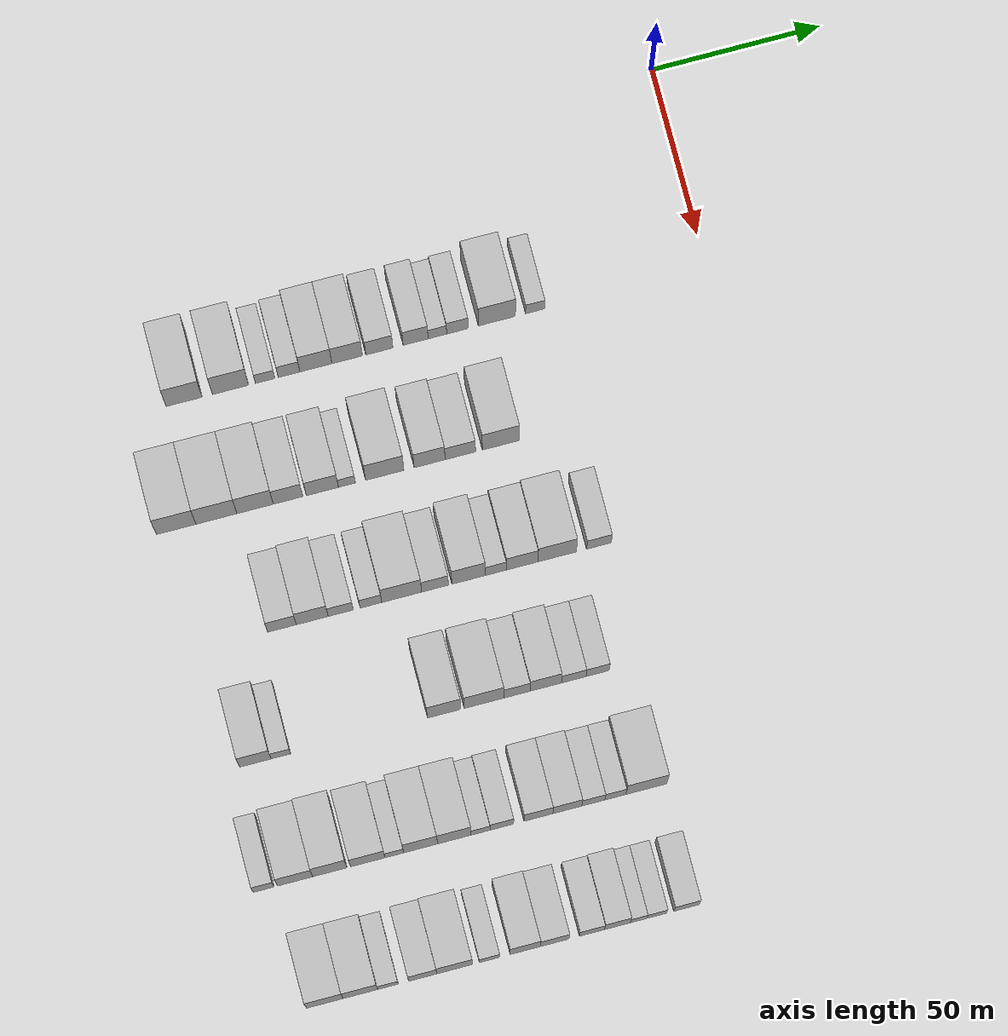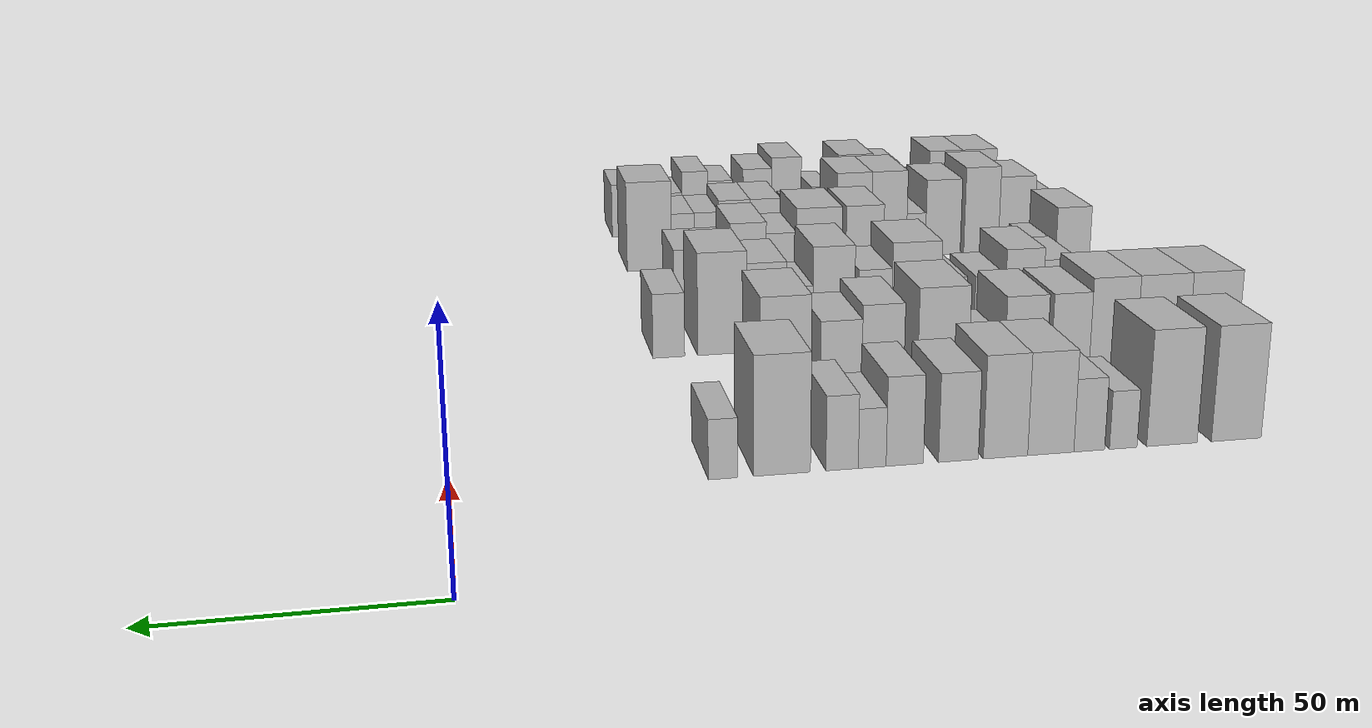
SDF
<sdf version="1.6">
 <world name="default">
  <model name="building_43">
   <static>1</static>
   <pose>50.0000 -153.5417 0 0.000000 0.000000 0.000000</pose>
   <link name="link">
    <pose>0 0 12.00 0 0 0</pose>
    <collision name="collision"><geometry><box><size>20.0000 10.5641 24.0000</size></box></geometry></collision>
    <visual name="visual">
     <cast_shadows>0</cast_shadows>
     <geometry><box><size>20.0000 10.5641 24.0000</size></box></geometry>
     <material>
      <script>
       <uri>model://HANNAS_wall/materials/scripts</uri>
       <uri>model://HANNAS_wall/materials/textures</uri>
       <name>vrc/HANNAS_wall</name>
      </script>
     </material>
    </visual>
   </link>
  </model>
  <model name="building_44">
   <static>1</static>
   <pose>50.0000 -139.9636 0 0.000000 0.000000 0.000000</pose>
   <link name="link">
    <pose>0 0 12.00 0 0 0</pose>
    <collision name="collision"><geometry><box><size>20.0000 10.5922 24.0000</size></box></geometry></collision>
    <visual name="visual">
     <cast_shadows>0</cast_shadows>
     <geometry><box><size>20.0000 10.5922 24.0000</size></box></geometry>
     <material>
      <script>
       <uri>model://HANNAS_wall/materials/scripts</uri>
       <uri>model://HANNAS_wall/materials/textures</uri>
       <name>vrc/HANNAS_wall</name>
      </script>
     </material>
    </visual>
   </link>
  </model>
  <model name="building_45">
   <static>1</static>
   <pose>50.0000 -129.8153 0 0.000000 0.000000 0.000000</pose>
   <link name="link">
    <pose>0 0 6.00 0 0 0</pose>
    <collision name="collision"><geometry><box><size>20.0000 5.7045 12.0000</size></box></geometry></collision>
    <visual name="visual">
     <cast_shadows>0</cast_shadows>
     <geometry><box><size>20.0000 5.7045 12.0000</size></box></geometry>
     <material>
      <script>
       <uri>model://HANNAS_wall/materials/scripts</uri>
       <uri>model://HANNAS_wall/materials/textures</uri>
       <name>vrc/HANNAS_wall</name>
      </script>
     </material>
    </visual>
   </link>
  </model>
  <model name="building_46">
   <static>1</static>
   <pose>50.0000 -122.7985 0 0.000000 0.000000 0.000000</pose>
   <link name="link">
    <pose>0 0 7.50 0 0 0</pose>
    <collision name="collision"><geometry><box><size>20.0000 6.3290 15.0000</size></box></geometry></collision>
    <visual name="visual">
     <cast_shadows>0</cast_shadows>
     <geometry><box><size>20.0000 6.3290 15.0000</size></box></geometry>
     <material>
      <script>
       <uri>model://HANNAS_wall/materials/scripts</uri>
       <uri>model://HANNAS_wall/materials/textures</uri>
       <name>vrc/HANNAS_wall</name>
      </script>
     </material>
    </visual>
   </link>
  </model>
  <model name="building_47">
   <static>1</static>
   <pose>50.0000 -114.9309 0 0.000000 0.000000 0.000000</pose>
   <link name="link">
    <pose>0 0 10.50 0 0 0</pose>
    <collision name="collision"><geometry><box><size>20.0000 9.4061 21.0000</size></box></geometry></collision>
    <visual name="visual">
     <cast_shadows>0</cast_shadows>
     <geometry><box><size>20.0000 9.4061 21.0000</size></box></geometry>
     <material>
      <script>
       <uri>model://HANNAS_wall/materials/scripts</uri>
       <uri>model://HANNAS_wall/materials/textures</uri>
       <name>vrc/HANNAS_wall</name>
      </script>
     </material>
    </visual>
   </link>
  </model>
  <model name="building_48">
   <static>1</static>
   <pose>50.0000 -105.7499 0 0.000000 0.000000 0.000000</pose>
   <link name="link">
    <pose>0 0 10.50 0 0 0</pose>
    <collision name="collision"><geometry><box><size>20.0000 8.9559 21.0000</size></box></geometry></collision>
    <visual name="visual">
     <cast_shadows>0</cast_shadows>
     <geometry><box><size>20.0000 8.9559 21.0000</size></box></geometry>
     <material>
      <script>
       <uri>model://HANNAS_wall/materials/scripts</uri>
       <uri>model://HANNAS_wall/materials/textures</uri>
       <name>vrc/HANNAS_wall</name>
      </script>
     </material>
    </visual>
   </link>
  </model>
  <model name="building_49">
   <static>1</static>
   <pose>50.0000 -96.2931 0 0.000000 0.000000 0.000000</pose>
   <link name="link">
    <pose>0 0 9.00 0 0 0</pose>
    <collision name="collision"><geometry><box><size>20.0000 7.9578 18.0000</size></box></geometry></collision>
    <visual name="visual">
     <cast_shadows>0</cast_shadows>
     <geometry><box><size>20.0000 7.9578 18.0000</size></box></geometry>
     <material>
      <script>
       <uri>model://HANNAS_wall/materials/scripts</uri>
       <uri>model://HANNAS_wall/materials/textures</uri>
       <name>vrc/HANNAS_wall</name>
      </script>
     </material>
    </visual>
   </link>
  </model>
  <model name="building_50">
   <static>1</static>
   <pose>50.0000 -85.6334 0 0.000000 0.000000 0.000000</pose>
   <link name="link">
    <pose>0 0 9.00 0 0 0</pose>
    <collision name="collision"><geometry><box><size>20.0000 7.3615 18.0000</size></box></geometry></collision>
    <visual name="visual">
     <cast_shadows>0</cast_shadows>
     <geometry><box><size>20.0000 7.3615 18.0000</size></box></geometry>
     <material>
      <script>
       <uri>model://HANNAS_wall/materials/scripts</uri>
       <uri>model://HANNAS_wall/materials/textures</uri>
       <name>vrc/HANNAS_wall</name>
      </script>
     </material>
    </visual>
   </link>
  </model>
  <model name="building_51">
   <static>1</static>
   <pose>50.0000 -79.2243 0 0.000000 0.000000 0.000000</pose>
   <link name="link">
    <pose>0 0 6.00 0 0 0</pose>
    <collision name="collision"><geometry><box><size>20.0000 5.4566 12.0000</size></box></geometry></collision>
    <visual name="visual">
     <cast_shadows>0</cast_shadows>
     <geometry><box><size>20.0000 5.4566 12.0000</size></box></geometry>
     <material>
      <script>
       <uri>model://HANNAS_wall/materials/scripts</uri>
       <uri>model://HANNAS_wall/materials/textures</uri>
       <name>vrc/HANNAS_wall</name>
      </script>
     </material>
    </visual>
   </link>
  </model>
  <model name="building_52">
   <static>1</static>
   <pose>50.0000 -73.3475 0 0.000000 0.000000 0.000000</pose>
   <link name="link">
    <pose>0 0 7.50 0 0 0</pose>
    <collision name="collision"><geometry><box><size>20.0000 6.2970 15.0000</size></box></geometry></collision>
    <visual name="visual">
     <cast_shadows>0</cast_shadows>
     <geometry><box><size>20.0000 6.2970 15.0000</size></box></geometry>
     <material>
      <script>
       <uri>model://HANNAS_wall/materials/scripts</uri>
       <uri>model://HANNAS_wall/materials/textures</uri>
       <name>vrc/HANNAS_wall</name>
      </script>
     </material>
    </visual>
   </link>
  </model>
  <model name="building_53">
   <static>1</static>
   <pose>50.0000 -61.7412 0 0.000000 0.000000 0.000000</pose>
   <link name="link">
    <pose>0 0 12.00 0 0 0</pose>
    <collision name="collision"><geometry><box><size>20.0000 10.9156 24.0000</size></box></geometry></collision>
    <visual name="visual">
     <cast_shadows>0</cast_shadows>
     <geometry><box><size>20.0000 10.9156 24.0000</size></box></geometry>
     <material>
      <script>
       <uri>model://HANNAS_wall/materials/scripts</uri>
       <uri>model://HANNAS_wall/materials/textures</uri>
       <name>vrc/HANNAS_wall</name>
      </script>
     </material>
    </visual>
   </link>
  </model>
  <model name="building_54">
   <static>1</static>
   <pose>50.0000 -50.4743 0 0.000000 0.000000 0.000000</pose>
   <link name="link">
    <pose>0 0 6.00 0 0 0</pose>
    <collision name="collision"><geometry><box><size>20.0000 5.6182 12.0000</size></box></geometry></collision>
    <visual name="visual">
     <cast_shadows>0</cast_shadows>
     <geometry><box><size>20.0000 5.6182 12.0000</size></box></geometry>
     <material>
      <script>
       <uri>model://HANNAS_wall/materials/scripts</uri>
       <uri>model://HANNAS_wall/materials/textures</uri>
       <name>vrc/HANNAS_wall</name>
      </script>
     </material>
    </visual>
   </link>
  </model>
  <model name="building_165">
   <static>1</static>
   <pose>85.0000 -164.6567 0 0.000000 0.000000 0.000000</pose>
   <link name="link">
    <pose>0 0 12.00 0 0 0</pose>
    <collision name="collision"><geometry><box><size>20.0000 11.5110 24.0000</size></box></geometry></collision>
    <visual name="visual">
     <cast_shadows>0</cast_shadows>
     <geometry><box><size>20.0000 11.5110 24.0000</size></box></geometry>
     <material>
      <script>
       <uri>model://HANNAS_wall/materials/scripts</uri>
       <uri>model://HANNAS_wall/materials/textures</uri>
       <name>vrc/HANNAS_wall</name>
      </script>
     </material>
    </visual>
   </link>
  </model>
  <model name="building_166">
   <static>1</static>
   <pose>85.0000 -152.9327 0 0.000000 0.000000 0.000000</pose>
   <link name="link">
    <pose>0 0 12.00 0 0 0</pose>
    <collision name="collision"><geometry><box><size>20.0000 11.9370 24.0000</size></box></geometry></collision>
    <visual name="visual">
     <cast_shadows>0</cast_shadows>
     <geometry><box><size>20.0000 11.9370 24.0000</size></box></geometry>
     <material>
      <script>
       <uri>model://HANNAS_wall/materials/scripts</uri>
       <uri>model://HANNAS_wall/materials/textures</uri>
       <name>vrc/HANNAS_wall</name>
      </script>
     </material>
    </visual>
   </link>
  </model>
  <model name="building_167">
   <static>1</static>
   <pose>85.0000 -141.6560 0 0.000000 0.000000 0.000000</pose>
   <link name="link">
    <pose>0 0 12.00 0 0 0</pose>
    <collision name="collision"><geometry><box><size>20.0000 10.6163 24.0000</size></box></geometry></collision>
    <visual name="visual">
     <cast_shadows>0</cast_shadows>
     <geometry><box><size>20.0000 10.6163 24.0000</size></box></geometry>
     <material>
      <script>
       <uri>model://HANNAS_wall/materials/scripts</uri>
       <uri>model://HANNAS_wall/materials/textures</uri>
       <name>vrc/HANNAS_wall</name>
      </script>
     </material>
    </visual>
   </link>
  </model>
  <model name="building_168">
   <static>1</static>
   <pose>85.0000 -132.0369 0 0.000000 0.000000 0.000000</pose>
   <link name="link">
    <pose>0 0 10.50 0 0 0</pose>
    <collision name="collision"><geometry><box><size>20.0000 8.6219 21.0000</size></box></geometry></collision>
    <visual name="visual">
     <cast_shadows>0</cast_shadows>
     <geometry><box><size>20.0000 8.6219 21.0000</size></box></geometry>
     <material>
      <script>
       <uri>model://HANNAS_wall/materials/scripts</uri>
       <uri>model://HANNAS_wall/materials/textures</uri>
       <name>vrc/HANNAS_wall</name>
      </script>
     </material>
    </visual>
   </link>
  </model>
  <model name="building_169">
   <static>1</static>
   <pose>85.0000 -122.0261 0 0.000000 0.000000 0.000000</pose>
   <link name="link">
    <pose>0 0 10.50 0 0 0</pose>
    <collision name="collision"><geometry><box><size>20.0000 9.3999 21.0000</size></box></geometry></collision>
    <visual name="visual">
     <cast_shadows>0</cast_shadows>
     <geometry><box><size>20.0000 9.3999 21.0000</size></box></geometry>
     <material>
      <script>
       <uri>model://HANNAS_wall/materials/scripts</uri>
       <uri>model://HANNAS_wall/materials/textures</uri>
       <name>vrc/HANNAS_wall</name>
      </script>
     </material>
    </visual>
   </link>
  </model>
  <model name="building_170">
   <static>1</static>
   <pose>85.0000 -114.8438 0 0.000000 0.000000 0.000000</pose>
   <link name="link">
    <pose>0 0 6.00 0 0 0</pose>
    <collision name="collision"><geometry><box><size>20.0000 4.9647 12.0000</size></box></geometry></collision>
    <visual name="visual">
     <cast_shadows>0</cast_shadows>
     <geometry><box><size>20.0000 4.9647 12.0000</size></box></geometry>
     <material>
      <script>
       <uri>model://HANNAS_wall/materials/scripts</uri>
       <uri>model://HANNAS_wall/materials/textures</uri>
       <name>vrc/HANNAS_wall</name>
      </script>
     </material>
    </visual>
   </link>
  </model>
  <model name="building_171">
   <static>1</static>
   <pose>85.0000 -103.7670 0 0.000000 0.000000 0.000000</pose>
   <link name="link">
    <pose>0 0 12.00 0 0 0</pose>
    <collision name="collision"><geometry><box><size>20.0000 11.1890 24.0000</size></box></geometry></collision>
    <visual name="visual">
     <cast_shadows>0</cast_shadows>
     <geometry><box><size>20.0000 11.1890 24.0000</size></box></geometry>
     <material>
      <script>
       <uri>model://HANNAS_wall/materials/scripts</uri>
       <uri>model://HANNAS_wall/materials/textures</uri>
       <name>vrc/HANNAS_wall</name>
      </script>
     </material>
    </visual>
   </link>
  </model>
  <model name="building_172">
   <static>1</static>
   <pose>85.0000 -90.6312 0 0.000000 0.000000 0.000000</pose>
   <link name="link">
    <pose>0 0 10.50 0 0 0</pose>
    <collision name="collision"><geometry><box><size>20.0000 9.0824 21.0000</size></box></geometry></collision>
    <visual name="visual">
     <cast_shadows>0</cast_shadows>
     <geometry><box><size>20.0000 9.0824 21.0000</size></box></geometry>
     <material>
      <script>
       <uri>model://HANNAS_wall/materials/scripts</uri>
       <uri>model://HANNAS_wall/materials/textures</uri>
       <name>vrc/HANNAS_wall</name>
      </script>
     </material>
    </visual>
   </link>
  </model>
  <model name="building_173">
   <static>1</static>
   <pose>85.0000 -81.6453 0 0.000000 0.000000 0.000000</pose>
   <link name="link">
    <pose>0 0 9.00 0 0 0</pose>
    <collision name="collision"><geometry><box><size>20.0000 8.8895 18.0000</size></box></geometry></collision>
    <visual name="visual">
     <cast_shadows>0</cast_shadows>
     <geometry><box><size>20.0000 8.8895 18.0000</size></box></geometry>
     <material>
      <script>
       <uri>model://HANNAS_wall/materials/scripts</uri>
       <uri>model://HANNAS_wall/materials/textures</uri>
       <name>vrc/HANNAS_wall</name>
      </script>
     </material>
    </visual>
   </link>
  </model>
  <model name="building_174">
   <static>1</static>
   <pose>85.0000 -69.7953 0 0.000000 0.000000 0.000000</pose>
   <link name="link">
    <pose>0 0 12.00 0 0 0</pose>
    <collision name="collision"><geometry><box><size>20.0000 10.8106 24.0000</size></box></geometry></collision>
    <visual name="visual">
     <cast_shadows>0</cast_shadows>
     <geometry><box><size>20.0000 10.8106 24.0000</size></box></geometry>
     <material>
      <script>
       <uri>model://HANNAS_wall/materials/scripts</uri>
       <uri>model://HANNAS_wall/materials/textures</uri>
       <name>vrc/HANNAS_wall</name>
      </script>
     </material>
    </visual>
   </link>
  </model>
  <model name="building_287">
   <static>1</static>
   <pose>120.0000 -142.7422 0 0.000000 0.000000 0.000000</pose>
   <link name="link">
    <pose>0 0 9.00 0 0 0</pose>
    <collision name="collision"><geometry><box><size>20.0000 8.3212 18.0000</size></box></geometry></collision>
    <visual name="visual">
     <cast_shadows>0</cast_shadows>
     <geometry><box><size>20.0000 8.3212 18.0000</size></box></geometry>
     <material>
      <script>
       <uri>model://HANNAS_wall/materials/scripts</uri>
       <uri>model://HANNAS_wall/materials/textures</uri>
       <name>vrc/HANNAS_wall</name>
      </script>
     </material>
    </visual>
   </link>
  </model>
  <model name="building_288">
   <static>1</static>
   <pose>120.0000 -133.9527 0 0.000000 0.000000 0.000000</pose>
   <link name="link">
    <pose>0 0 10.50 0 0 0</pose>
    <collision name="collision"><geometry><box><size>20.0000 9.2579 21.0000</size></box></geometry></collision>
    <visual name="visual">
     <cast_shadows>0</cast_shadows>
     <geometry><box><size>20.0000 9.2579 21.0000</size></box></geometry>
     <material>
      <script>
       <uri>model://HANNAS_wall/materials/scripts</uri>
       <uri>model://HANNAS_wall/materials/textures</uri>
       <name>vrc/HANNAS_wall</name>
      </script>
     </material>
    </visual>
   </link>
  </model>
  <model name="building_289">
   <static>1</static>
   <pose>120.0000 -125.6674 0 0.000000 0.000000 0.000000</pose>
   <link name="link">
    <pose>0 0 7.50 0 0 0</pose>
    <collision name="collision"><geometry><box><size>20.0000 7.3127 15.0000</size></box></geometry></collision>
    <visual name="visual">
     <cast_shadows>0</cast_shadows>
     <geometry><box><size>20.0000 7.3127 15.0000</size></box></geometry>
     <material>
      <script>
       <uri>model://HANNAS_wall/materials/scripts</uri>
       <uri>model://HANNAS_wall/materials/textures</uri>
       <name>vrc/HANNAS_wall</name>
      </script>
     </material>
    </visual>
   </link>
  </model>
  <model name="building_290">
   <static>1</static>
   <pose>120.0000 -116.8660 0 0.000000 0.000000 0.000000</pose>
   <link name="link">
    <pose>0 0 7.50 0 0 0</pose>
    <collision name="collision"><geometry><box><size>20.0000 6.2902 15.0000</size></box></geometry></collision>
    <visual name="visual">
     <cast_shadows>0</cast_shadows>
     <geometry><box><size>20.0000 6.2902 15.0000</size></box></geometry>
     <material>
      <script>
       <uri>model://HANNAS_wall/materials/scripts</uri>
       <uri>model://HANNAS_wall/materials/textures</uri>
       <name>vrc/HANNAS_wall</name>
      </script>
     </material>
    </visual>
   </link>
  </model>
  <model name="building_291">
   <static>1</static>
   <pose>120.0000 -107.8985 0 0.000000 0.000000 0.000000</pose>
   <link name="link">
    <pose>0 0 12.00 0 0 0</pose>
    <collision name="collision"><geometry><box><size>20.0000 11.6447 24.0000</size></box></geometry></collision>
    <visual name="visual">
     <cast_shadows>0</cast_shadows>
     <geometry><box><size>20.0000 11.6447 24.0000</size></box></geometry>
     <material>
      <script>
       <uri>model://HANNAS_wall/materials/scripts</uri>
       <uri>model://HANNAS_wall/materials/textures</uri>
       <name>vrc/HANNAS_wall</name>
      </script>
     </material>
    </visual>
   </link>
  </model>
  <model name="building_292">
   <static>1</static>
   <pose>120.0000 -98.1757 0 0.000000 0.000000 0.000000</pose>
   <link name="link">
    <pose>0 0 9.00 0 0 0</pose>
    <collision name="collision"><geometry><box><size>20.0000 7.8008 18.0000</size></box></geometry></collision>
    <visual name="visual">
     <cast_shadows>0</cast_shadows>
     <geometry><box><size>20.0000 7.8008 18.0000</size></box></geometry>
     <material>
      <script>
       <uri>model://HANNAS_wall/materials/scripts</uri>
       <uri>model://HANNAS_wall/materials/textures</uri>
       <name>vrc/HANNAS_wall</name>
      </script>
     </material>
    </visual>
   </link>
  </model>
  <model name="building_293">
   <static>1</static>
   <pose>120.0000 -88.4019 0 0.000000 0.000000 0.000000</pose>
   <link name="link">
    <pose>0 0 12.00 0 0 0</pose>
    <collision name="collision"><geometry><box><size>20.0000 9.7467 24.0000</size></box></geometry></collision>
    <visual name="visual">
     <cast_shadows>0</cast_shadows>
     <geometry><box><size>20.0000 9.7467 24.0000</size></box></geometry>
     <material>
      <script>
       <uri>model://HANNAS_wall/materials/scripts</uri>
       <uri>model://HANNAS_wall/materials/textures</uri>
       <name>vrc/HANNAS_wall</name>
      </script>
     </material>
    </visual>
   </link>
  </model>
  <model name="building_294">
   <static>1</static>
   <pose>120.0000 -80.4651 0 0.000000 0.000000 0.000000</pose>
   <link name="link">
    <pose>0 0 7.50 0 0 0</pose>
    <collision name="collision"><geometry><box><size>20.0000 6.1270 15.0000</size></box></geometry></collision>
    <visual name="visual">
     <cast_shadows>0</cast_shadows>
     <geometry><box><size>20.0000 6.1270 15.0000</size></box></geometry>
     <material>
      <script>
       <uri>model://HANNAS_wall/materials/scripts</uri>
       <uri>model://HANNAS_wall/materials/textures</uri>
       <name>vrc/HANNAS_wall</name>
      </script>
     </material>
    </visual>
   </link>
  </model>
  <model name="building_295">
   <static>1</static>
   <pose>120.0000 -72.7918 0 0.000000 0.000000 0.000000</pose>
   <link name="link">
    <pose>0 0 10.50 0 0 0</pose>
    <collision name="collision"><geometry><box><size>20.0000 9.2196 21.0000</size></box></geometry></collision>
    <visual name="visual">
     <cast_shadows>0</cast_shadows>
     <geometry><box><size>20.0000 9.2196 21.0000</size></box></geometry>
     <material>
      <script>
       <uri>model://HANNAS_wall/materials/scripts</uri>
       <uri>model://HANNAS_wall/materials/textures</uri>
       <name>vrc/HANNAS_wall</name>
      </script>
     </material>
    </visual>
   </link>
  </model>
  <model name="building_296">
   <static>1</static>
   <pose>120.0000 -62.5695 0 0.000000 0.000000 0.000000</pose>
   <link name="link">
    <pose>0 0 12.00 0 0 0</pose>
    <collision name="collision"><geometry><box><size>20.0000 11.2250 24.0000</size></box></geometry></collision>
    <visual name="visual">
     <cast_shadows>0</cast_shadows>
     <geometry><box><size>20.0000 11.2250 24.0000</size></box></geometry>
     <material>
      <script>
       <uri>model://HANNAS_wall/materials/scripts</uri>
       <uri>model://HANNAS_wall/materials/textures</uri>
       <name>vrc/HANNAS_wall</name>
      </script>
     </material>
    </visual>
   </link>
  </model>
  <model name="building_297">
   <static>1</static>
   <pose>120.0000 -50.3438 0 0.000000 0.000000 0.000000</pose>
   <link name="link">
    <pose>0 0 7.50 0 0 0</pose>
    <collision name="collision"><geometry><box><size>20.0000 7.2263 15.0000</size></box></geometry></collision>
    <visual name="visual">
     <cast_shadows>0</cast_shadows>
     <geometry><box><size>20.0000 7.2263 15.0000</size></box></geometry>
     <material>
      <script>
       <uri>model://HANNAS_wall/materials/scripts</uri>
       <uri>model://HANNAS_wall/materials/textures</uri>
       <name>vrc/HANNAS_wall</name>
      </script>
     </material>
    </visual>
   </link>
  </model>
  <model name="building_410">
   <static>1</static>
   <pose>155.0000 -159.3391 0 0.000000 0.000000 0.000000</pose>
   <link name="link">
    <pose>0 0 10.50 0 0 0</pose>
    <collision name="collision"><geometry><box><size>20.0000 9.1171 21.0000</size></box></geometry></collision>
    <visual name="visual">
     <cast_shadows>0</cast_shadows>
     <geometry><box><size>20.0000 9.1171 21.0000</size></box></geometry>
     <material>
      <script>
       <uri>model://HANNAS_wall/materials/scripts</uri>
       <uri>model://HANNAS_wall/materials/textures</uri>
       <name>vrc/HANNAS_wall</name>
      </script>
     </material>
    </visual>
   </link>
  </model>
  <model name="building_411">
   <static>1</static>
   <pose>155.0000 -151.9649 0 0.000000 0.000000 0.000000</pose>
   <link name="link">
    <pose>0 0 6.00 0 0 0</pose>
    <collision name="collision"><geometry><box><size>20.0000 5.6314 12.0000</size></box></geometry></collision>
    <visual name="visual">
     <cast_shadows>0</cast_shadows>
     <geometry><box><size>20.0000 5.6314 12.0000</size></box></geometry>
     <material>
      <script>
       <uri>model://HANNAS_wall/materials/scripts</uri>
       <uri>model://HANNAS_wall/materials/textures</uri>
       <name>vrc/HANNAS_wall</name>
      </script>
     </material>
    </visual>
   </link>
  </model>
  <model name="building_412">
   <static>1</static>
   <pose>155.0000 -104.6841 0 0.000000 0.000000 0.000000</pose>
   <link name="link">
    <pose>0 0 12.00 0 0 0</pose>
    <collision name="collision"><geometry><box><size>20.0000 9.6434 24.0000</size></box></geometry></collision>
    <visual name="visual">
     <cast_shadows>0</cast_shadows>
     <geometry><box><size>20.0000 9.6434 24.0000</size></box></geometry>
     <material>
      <script>
       <uri>model://HANNAS_wall/materials/scripts</uri>
       <uri>model://HANNAS_wall/materials/textures</uri>
       <name>vrc/HANNAS_wall</name>
      </script>
     </material>
    </visual>
   </link>
  </model>
  <model name="building_413">
   <static>1</static>
   <pose>155.0000 -93.1049 0 0.000000 0.000000 0.000000</pose>
   <link name="link">
    <pose>0 0 12.00 0 0 0</pose>
    <collision name="collision"><geometry><box><size>20.0000 11.5149 24.0000</size></box></geometry></collision>
    <visual name="visual">
     <cast_shadows>0</cast_shadows>
     <geometry><box><size>20.0000 11.5149 24.0000</size></box></geometry>
     <material>
      <script>
       <uri>model://HANNAS_wall/materials/scripts</uri>
       <uri>model://HANNAS_wall/materials/textures</uri>
       <name>vrc/HANNAS_wall</name>
      </script>
     </material>
    </visual>
   </link>
  </model>
  <model name="building_414">
   <static>1</static>
   <pose>155.0000 -83.5322 0 0.000000 0.000000 0.000000</pose>
   <link name="link">
    <pose>0 0 9.00 0 0 0</pose>
    <collision name="collision"><geometry><box><size>20.0000 7.6307 18.0000</size></box></geometry></collision>
    <visual name="visual">
     <cast_shadows>0</cast_shadows>
     <geometry><box><size>20.0000 7.6307 18.0000</size></box></geometry>
     <material>
      <script>
       <uri>model://HANNAS_wall/materials/scripts</uri>
       <uri>model://HANNAS_wall/materials/textures</uri>
       <name>vrc/HANNAS_wall</name>
      </script>
     </material>
    </visual>
   </link>
  </model>
  <model name="building_415">
   <static>1</static>
   <pose>155.0000 -75.1694 0 0.000000 0.000000 0.000000</pose>
   <link name="link">
    <pose>0 0 10.50 0 0 0</pose>
    <collision name="collision"><geometry><box><size>20.0000 9.0949 21.0000</size></box></geometry></collision>
    <visual name="visual">
     <cast_shadows>0</cast_shadows>
     <geometry><box><size>20.0000 9.0949 21.0000</size></box></geometry>
     <material>
      <script>
       <uri>model://HANNAS_wall/materials/scripts</uri>
       <uri>model://HANNAS_wall/materials/textures</uri>
       <name>vrc/HANNAS_wall</name>
      </script>
     </material>
    </visual>
   </link>
  </model>
  <model name="building_416">
   <static>1</static>
   <pose>155.0000 -67.0135 0 0.000000 0.000000 0.000000</pose>
   <link name="link">
    <pose>0 0 7.50 0 0 0</pose>
    <collision name="collision"><geometry><box><size>20.0000 7.2168 15.0000</size></box></geometry></collision>
    <visual name="visual">
     <cast_shadows>0</cast_shadows>
     <geometry><box><size>20.0000 7.2168 15.0000</size></box></geometry>
     <material>
      <script>
       <uri>model://HANNAS_wall/materials/scripts</uri>
       <uri>model://HANNAS_wall/materials/textures</uri>
       <name>vrc/HANNAS_wall</name>
      </script>
     </material>
    </visual>
   </link>
  </model>
  <model name="building_417">
   <static>1</static>
   <pose>155.0000 -60.0645 0 0.000000 0.000000 0.000000</pose>
   <link name="link">
    <pose>0 0 7.50 0 0 0</pose>
    <collision name="collision"><geometry><box><size>20.0000 6.6814 15.0000</size></box></geometry></collision>
    <visual name="visual">
     <cast_shadows>0</cast_shadows>
     <geometry><box><size>20.0000 6.6814 15.0000</size></box></geometry>
     <material>
      <script>
       <uri>model://HANNAS_wall/materials/scripts</uri>
       <uri>model://HANNAS_wall/materials/textures</uri>
       <name>vrc/HANNAS_wall</name>
      </script>
     </material>
    </visual>
   </link>
  </model>
  <model name="building_532">
   <static>1</static>
   <pose>190.0000 -165.8626 0 0.000000 0.000000 0.000000</pose>
   <link name="link">
    <pose>0 0 7.50 0 0 0</pose>
    <collision name="collision"><geometry><box><size>20.0000 6.0098 15.0000</size></box></geometry></collision>
    <visual name="visual">
     <cast_shadows>0</cast_shadows>
     <geometry><box><size>20.0000 6.0098 15.0000</size></box></geometry>
     <material>
      <script>
       <uri>model://HANNAS_wall/materials/scripts</uri>
       <uri>model://HANNAS_wall/materials/textures</uri>
       <name>vrc/HANNAS_wall</name>
      </script>
     </material>
    </visual>
   </link>
  </model>
  <model name="building_533">
   <static>1</static>
   <pose>190.0000 -156.7784 0 0.000000 0.000000 0.000000</pose>
   <link name="link">
    <pose>0 0 10.50 0 0 0</pose>
    <collision name="collision"><geometry><box><size>20.0000 10.1585 21.0000</size></box></geometry></collision>
    <visual name="visual">
     <cast_shadows>0</cast_shadows>
     <geometry><box><size>20.0000 10.1585 21.0000</size></box></geometry>
     <material>
      <script>
       <uri>model://HANNAS_wall/materials/scripts</uri>
       <uri>model://HANNAS_wall/materials/textures</uri>
       <name>vrc/HANNAS_wall</name>
      </script>
     </material>
    </visual>
   </link>
  </model>
  <model name="building_534">
   <static>1</static>
   <pose>190.0000 -146.7680 0 0.000000 0.000000 0.000000</pose>
   <link name="link">
    <pose>0 0 12.00 0 0 0</pose>
    <collision name="collision"><geometry><box><size>20.0000 9.8624 24.0000</size></box></geometry></collision>
    <visual name="visual">
     <cast_shadows>0</cast_shadows>
     <geometry><box><size>20.0000 9.8624 24.0000</size></box></geometry>
     <material>
      <script>
       <uri>model://HANNAS_wall/materials/scripts</uri>
       <uri>model://HANNAS_wall/materials/textures</uri>
       <name>vrc/HANNAS_wall</name>
      </script>
     </material>
    </visual>
   </link>
  </model>
  <model name="building_535">
   <static>1</static>
   <pose>190.0000 -135.8597 0 0.000000 0.000000 0.000000</pose>
   <link name="link">
    <pose>0 0 10.50 0 0 0</pose>
    <collision name="collision"><geometry><box><size>20.0000 9.9542 21.0000</size></box></geometry></collision>
    <visual name="visual">
     <cast_shadows>0</cast_shadows>
     <geometry><box><size>20.0000 9.9542 21.0000</size></box></geometry>
     <material>
      <script>
       <uri>model://HANNAS_wall/materials/scripts</uri>
       <uri>model://HANNAS_wall/materials/textures</uri>
       <name>vrc/HANNAS_wall</name>
      </script>
     </material>
    </visual>
   </link>
  </model>
  <model name="building_536">
   <static>1</static>
   <pose>190.0000 -128.2018 0 0.000000 0.000000 0.000000</pose>
   <link name="link">
    <pose>0 0 6.00 0 0 0</pose>
    <collision name="collision"><geometry><box><size>20.0000 5.3617 12.0000</size></box></geometry></collision>
    <visual name="visual">
     <cast_shadows>0</cast_shadows>
     <geometry><box><size>20.0000 5.3617 12.0000</size></box></geometry>
     <material>
      <script>
       <uri>model://HANNAS_wall/materials/scripts</uri>
       <uri>model://HANNAS_wall/materials/textures</uri>
       <name>vrc/HANNAS_wall</name>
      </script>
     </material>
    </visual>
   </link>
  </model>
  <model name="building_537">
   <static>1</static>
   <pose>190.0000 -120.6065 0 0.000000 0.000000 0.000000</pose>
   <link name="link">
    <pose>0 0 12.00 0 0 0</pose>
    <collision name="collision"><geometry><box><size>20.0000 9.8288 24.0000</size></box></geometry></collision>
    <visual name="visual">
     <cast_shadows>0</cast_shadows>
     <geometry><box><size>20.0000 9.8288 24.0000</size></box></geometry>
     <material>
      <script>
       <uri>model://HANNAS_wall/materials/scripts</uri>
       <uri>model://HANNAS_wall/materials/textures</uri>
       <name>vrc/HANNAS_wall</name>
      </script>
     </material>
    </visual>
   </link>
  </model>
  <model name="building_538">
   <static>1</static>
   <pose>190.0000 -110.8567 0 0.000000 0.000000 0.000000</pose>
   <link name="link">
    <pose>0 0 12.00 0 0 0</pose>
    <collision name="collision"><geometry><box><size>20.0000 9.6709 24.0000</size></box></geometry></collision>
    <visual name="visual">
     <cast_shadows>0</cast_shadows>
     <geometry><box><size>20.0000 9.6709 24.0000</size></box></geometry>
     <material>
      <script>
       <uri>model://HANNAS_wall/materials/scripts</uri>
       <uri>model://HANNAS_wall/materials/textures</uri>
       <name>vrc/HANNAS_wall</name>
      </script>
     </material>
    </visual>
   </link>
  </model>
  <model name="building_539">
   <static>1</static>
   <pose>190.0000 -103.2756 0 0.000000 0.000000 0.000000</pose>
   <link name="link">
    <pose>0 0 6.00 0 0 0</pose>
    <collision name="collision"><geometry><box><size>20.0000 5.4913 12.0000</size></box></geometry></collision>
    <visual name="visual">
     <cast_shadows>0</cast_shadows>
     <geometry><box><size>20.0000 5.4913 12.0000</size></box></geometry>
     <material>
      <script>
       <uri>model://HANNAS_wall/materials/scripts</uri>
       <uri>model://HANNAS_wall/materials/textures</uri>
       <name>vrc/HANNAS_wall</name>
      </script>
     </material>
    </visual>
   </link>
  </model>
  <model name="building_540">
   <static>1</static>
   <pose>190.0000 -97.1244 0 0.000000 0.000000 0.000000</pose>
   <link name="link">
    <pose>0 0 7.50 0 0 0</pose>
    <collision name="collision"><geometry><box><size>20.0000 6.8111 15.0000</size></box></geometry></collision>
    <visual name="visual">
     <cast_shadows>0</cast_shadows>
     <geometry><box><size>20.0000 6.8111 15.0000</size></box></geometry>
     <material>
      <script>
       <uri>model://HANNAS_wall/materials/scripts</uri>
       <uri>model://HANNAS_wall/materials/textures</uri>
       <name>vrc/HANNAS_wall</name>
      </script>
     </material>
    </visual>
   </link>
  </model>
  <model name="building_541">
   <static>1</static>
   <pose>190.0000 -86.5467 0 0.000000 0.000000 0.000000</pose>
   <link name="link">
    <pose>0 0 9.00 0 0 0</pose>
    <collision name="collision"><geometry><box><size>20.0000 8.3444 18.0000</size></box></geometry></collision>
    <visual name="visual">
     <cast_shadows>0</cast_shadows>
     <geometry><box><size>20.0000 8.3444 18.0000</size></box></geometry>
     <material>
      <script>
       <uri>model://HANNAS_wall/materials/scripts</uri>
       <uri>model://HANNAS_wall/materials/textures</uri>
       <name>vrc/HANNAS_wall</name>
      </script>
     </material>
    </visual>
   </link>
  </model>
  <model name="building_542">
   <static>1</static>
   <pose>190.0000 -78.1781 0 0.000000 0.000000 0.000000</pose>
   <link name="link">
    <pose>0 0 9.00 0 0 0</pose>
    <collision name="collision"><geometry><box><size>20.0000 8.3928 18.0000</size></box></geometry></collision>
    <visual name="visual">
     <cast_shadows>0</cast_shadows>
     <geometry><box><size>20.0000 8.3928 18.0000</size></box></geometry>
     <material>
      <script>
       <uri>model://HANNAS_wall/materials/scripts</uri>
       <uri>model://HANNAS_wall/materials/textures</uri>
       <name>vrc/HANNAS_wall</name>
      </script>
     </material>
    </visual>
   </link>
  </model>
  <model name="building_543">
   <static>1</static>
   <pose>190.0000 -70.6478 0 0.000000 0.000000 0.000000</pose>
   <link name="link">
    <pose>0 0 7.50 0 0 0</pose>
    <collision name="collision"><geometry><box><size>20.0000 6.6677 15.0000</size></box></geometry></collision>
    <visual name="visual">
     <cast_shadows>0</cast_shadows>
     <geometry><box><size>20.0000 6.6677 15.0000</size></box></geometry>
     <material>
      <script>
       <uri>model://HANNAS_wall/materials/scripts</uri>
       <uri>model://HANNAS_wall/materials/textures</uri>
       <name>vrc/HANNAS_wall</name>
      </script>
     </material>
    </visual>
   </link>
  </model>
  <model name="building_544">
   <static>1</static>
   <pose>190.0000 -64.2726 0 0.000000 0.000000 0.000000</pose>
   <link name="link">
    <pose>0 0 7.50 0 0 0</pose>
    <collision name="collision"><geometry><box><size>20.0000 6.0828 15.0000</size></box></geometry></collision>
    <visual name="visual">
     <cast_shadows>0</cast_shadows>
     <geometry><box><size>20.0000 6.0828 15.0000</size></box></geometry>
     <material>
      <script>
       <uri>model://HANNAS_wall/materials/scripts</uri>
       <uri>model://HANNAS_wall/materials/textures</uri>
       <name>vrc/HANNAS_wall</name>
      </script>
     </material>
    </visual>
   </link>
  </model>
  <model name="building_545">
   <static>1</static>
   <pose>190.0000 -55.3181 0 0.000000 0.000000 0.000000</pose>
   <link name="link">
    <pose>0 0 12.00 0 0 0</pose>
    <collision name="collision"><geometry><box><size>20.0000 11.8262 24.0000</size></box></geometry></collision>
    <visual name="visual">
     <cast_shadows>0</cast_shadows>
     <geometry><box><size>20.0000 11.8262 24.0000</size></box></geometry>
     <material>
      <script>
       <uri>model://HANNAS_wall/materials/scripts</uri>
       <uri>model://HANNAS_wall/materials/textures</uri>
       <name>vrc/HANNAS_wall</name>
      </script>
     </material>
    </visual>
   </link>
  </model>
  <model name="building_668">
   <static>1</static>
   <pose>225.0000 -157.2203 0 0.000000 0.000000 0.000000</pose>
   <link name="link">
    <pose>0 0 10.50 0 0 0</pose>
    <collision name="collision"><geometry><box><size>20.0000 10.4599 21.0000</size></box></geometry></collision>
    <visual name="visual">
     <cast_shadows>0</cast_shadows>
     <geometry><box><size>20.0000 10.4599 21.0000</size></box></geometry>
     <material>
      <script>
       <uri>model://HANNAS_wall/materials/scripts</uri>
       <uri>model://HANNAS_wall/materials/textures</uri>
       <name>vrc/HANNAS_wall</name>
      </script>
     </material>
    </visual>
   </link>
  </model>
  <model name="building_669">
   <static>1</static>
   <pose>225.0000 -147.0080 0 0.000000 0.000000 0.000000</pose>
   <link name="link">
    <pose>0 0 10.50 0 0 0</pose>
    <collision name="collision"><geometry><box><size>20.0000 9.9647 21.0000</size></box></geometry></collision>
    <visual name="visual">
     <cast_shadows>0</cast_shadows>
     <geometry><box><size>20.0000 9.9647 21.0000</size></box></geometry>
     <material>
      <script>
       <uri>model://HANNAS_wall/materials/scripts</uri>
       <uri>model://HANNAS_wall/materials/textures</uri>
       <name>vrc/HANNAS_wall</name>
      </script>
     </material>
    </visual>
   </link>
  </model>
  <model name="building_670">
   <static>1</static>
   <pose>225.0000 -139.0854 0 0.000000 0.000000 0.000000</pose>
   <link name="link">
    <pose>0 0 6.00 0 0 0</pose>
    <collision name="collision"><geometry><box><size>20.0000 5.8803 12.0000</size></box></geometry></collision>
    <visual name="visual">
     <cast_shadows>0</cast_shadows>
     <geometry><box><size>20.0000 5.8803 12.0000</size></box></geometry>
     <material>
      <script>
       <uri>model://HANNAS_wall/materials/scripts</uri>
       <uri>model://HANNAS_wall/materials/textures</uri>
       <name>vrc/HANNAS_wall</name>
      </script>
     </material>
    </visual>
   </link>
  </model>
  <model name="building_671">
   <static>1</static>
   <pose>225.0000 -129.1025 0 0.000000 0.000000 0.000000</pose>
   <link name="link">
    <pose>0 0 9.00 0 0 0</pose>
    <collision name="collision"><geometry><box><size>20.0000 8.0856 18.0000</size></box></geometry></collision>
    <visual name="visual">
     <cast_shadows>0</cast_shadows>
     <geometry><box><size>20.0000 8.0856 18.0000</size></box></geometry>
     <material>
      <script>
       <uri>model://HANNAS_wall/materials/scripts</uri>
       <uri>model://HANNAS_wall/materials/textures</uri>
       <name>vrc/HANNAS_wall</name>
      </script>
     </material>
    </visual>
   </link>
  </model>
  <model name="building_672">
   <static>1</static>
   <pose>225.0000 -119.9460 0 0.000000 0.000000 0.000000</pose>
   <link name="link">
    <pose>0 0 10.50 0 0 0</pose>
    <collision name="collision"><geometry><box><size>20.0000 10.2273 21.0000</size></box></geometry></collision>
    <visual name="visual">
     <cast_shadows>0</cast_shadows>
     <geometry><box><size>20.0000 10.2273 21.0000</size></box></geometry>
     <material>
      <script>
       <uri>model://HANNAS_wall/materials/scripts</uri>
       <uri>model://HANNAS_wall/materials/textures</uri>
       <name>vrc/HANNAS_wall</name>
      </script>
     </material>
    </visual>
   </link>
  </model>
  <model name="building_673">
   <static>1</static>
   <pose>225.0000 -109.8980 0 0.000000 0.000000 0.000000</pose>
   <link name="link">
    <pose>0 0 6.00 0 0 0</pose>
    <collision name="collision"><geometry><box><size>20.0000 5.8688 12.0000</size></box></geometry></collision>
    <visual name="visual">
     <cast_shadows>0</cast_shadows>
     <geometry><box><size>20.0000 5.8688 12.0000</size></box></geometry>
     <material>
      <script>
       <uri>model://HANNAS_wall/materials/scripts</uri>
       <uri>model://HANNAS_wall/materials/textures</uri>
       <name>vrc/HANNAS_wall</name>
      </script>
     </material>
    </visual>
   </link>
  </model>
  <model name="building_674">
   <static>1</static>
   <pose>225.0000 -99.5998 0 0.000000 0.000000 0.000000</pose>
   <link name="link">
    <pose>0 0 10.50 0 0 0</pose>
    <collision name="collision"><geometry><box><size>20.0000 8.7276 21.0000</size></box></geometry></collision>
    <visual name="visual">
     <cast_shadows>0</cast_shadows>
     <geometry><box><size>20.0000 8.7276 21.0000</size></box></geometry>
     <material>
      <script>
       <uri>model://HANNAS_wall/materials/scripts</uri>
       <uri>model://HANNAS_wall/materials/textures</uri>
       <name>vrc/HANNAS_wall</name>
      </script>
     </material>
    </visual>
   </link>
  </model>
  <model name="building_675">
   <static>1</static>
   <pose>225.0000 -91.1182 0 0.000000 0.000000 0.000000</pose>
   <link name="link">
    <pose>0 0 9.00 0 0 0</pose>
    <collision name="collision"><geometry><box><size>20.0000 8.2356 18.0000</size></box></geometry></collision>
    <visual name="visual">
     <cast_shadows>0</cast_shadows>
     <geometry><box><size>20.0000 8.2356 18.0000</size></box></geometry>
     <material>
      <script>
       <uri>model://HANNAS_wall/materials/scripts</uri>
       <uri>model://HANNAS_wall/materials/textures</uri>
       <name>vrc/HANNAS_wall</name>
      </script>
     </material>
    </visual>
   </link>
  </model>
  <model name="building_676">
   <static>1</static>
   <pose>225.0000 -80.3714 0 0.000000 0.000000 0.000000</pose>
   <link name="link">
    <pose>0 0 7.50 0 0 0</pose>
    <collision name="collision"><geometry><box><size>20.0000 7.2582 15.0000</size></box></geometry></collision>
    <visual name="visual">
     <cast_shadows>0</cast_shadows>
     <geometry><box><size>20.0000 7.2582 15.0000</size></box></geometry>
     <material>
      <script>
       <uri>model://HANNAS_wall/materials/scripts</uri>
       <uri>model://HANNAS_wall/materials/textures</uri>
       <name>vrc/HANNAS_wall</name>
      </script>
     </material>
    </visual>
   </link>
  </model>
  <model name="building_677">
   <static>1</static>
   <pose>225.0000 -73.0307 0 0.000000 0.000000 0.000000</pose>
   <link name="link">
    <pose>0 0 9.00 0 0 0</pose>
    <collision name="collision"><geometry><box><size>20.0000 7.4231 18.0000</size></box></geometry></collision>
    <visual name="visual">
     <cast_shadows>0</cast_shadows>
     <geometry><box><size>20.0000 7.4231 18.0000</size></box></geometry>
     <material>
      <script>
       <uri>model://HANNAS_wall/materials/scripts</uri>
       <uri>model://HANNAS_wall/materials/textures</uri>
       <name>vrc/HANNAS_wall</name>
      </script>
     </material>
    </visual>
   </link>
  </model>
  <model name="building_678">
   <static>1</static>
   <pose>225.0000 -66.9157 0 0.000000 0.000000 0.000000</pose>
   <link name="link">
    <pose>0 0 6.00 0 0 0</pose>
    <collision name="collision"><geometry><box><size>20.0000 4.8070 12.0000</size></box></geometry></collision>
    <visual name="visual">
     <cast_shadows>0</cast_shadows>
     <geometry><box><size>20.0000 4.8070 12.0000</size></box></geometry>
     <material>
      <script>
       <uri>model://HANNAS_wall/materials/scripts</uri>
       <uri>model://HANNAS_wall/materials/textures</uri>
       <name>vrc/HANNAS_wall</name>
      </script>
     </material>
    </visual>
   </link>
  </model>
  <model name="building_679">
   <static>1</static>
   <pose>225.0000 -61.6526 0 0.000000 0.000000 0.000000</pose>
   <link name="link">
    <pose>0 0 6.00 0 0 0</pose>
    <collision name="collision"><geometry><box><size>20.0000 5.7193 12.0000</size></box></geometry></collision>
    <visual name="visual">
     <cast_shadows>0</cast_shadows>
     <geometry><box><size>20.0000 5.7193 12.0000</size></box></geometry>
     <material>
      <script>
       <uri>model://HANNAS_wall/materials/scripts</uri>
       <uri>model://HANNAS_wall/materials/textures</uri>
       <name>vrc/HANNAS_wall</name>
      </script>
     </material>
    </visual>
   </link>
  </model>
  <model name="building_680">
   <static>1</static>
   <pose>225.0000 -53.0852 0 0.000000 0.000000 0.000000</pose>
   <link name="link">
    <pose>0 0 7.50 0 0 0</pose>
    <collision name="collision"><geometry><box><size>20.0000 7.4153 15.0000</size></box></geometry></collision>
    <visual name="visual">
     <cast_shadows>0</cast_shadows>
     <geometry><box><size>20.0000 7.4153 15.0000</size></box></geometry>
     <material>
      <script>
       <uri>model://HANNAS_wall/materials/scripts</uri>
       <uri>model://HANNAS_wall/materials/textures</uri>
       <name>vrc/HANNAS_wall</name>
      </script>
     </material>
    </visual>
   </link>
  </model>
 </world>
</sdf>
